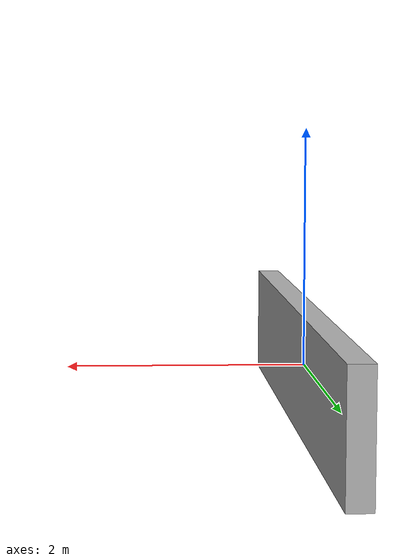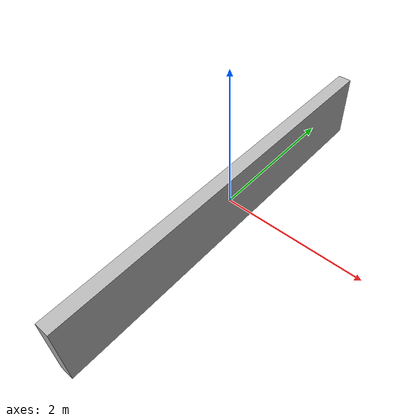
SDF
<?xml version='1.0'?>
<sdf version='1.6'>
  <model name='room_1_wall_left'>
    <static>true</static>
    <link name='link'>
      <collision name='collision'>
        <pose>0 0 0 0 0 0</pose>
        <geometry>
          <box>
            <size>0.2 5.66 1.0</size>
          </box>
        </geometry>
      </collision>
      <visual name='visual'>
        <pose>0 0 0 0 0 0</pose>
        <geometry>
          <box>
            <size>0.2 5.66 1.0</size>
          </box>
        </geometry>
      </visual>
    </link>
  </model>
</sdf>
